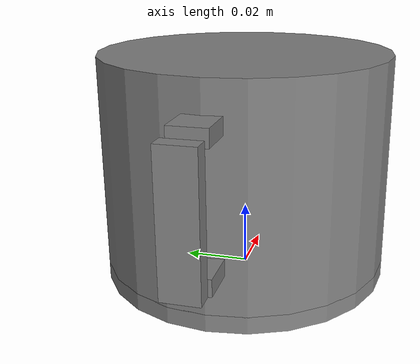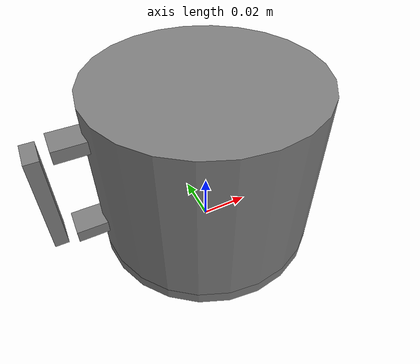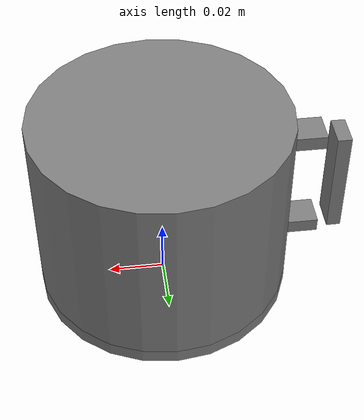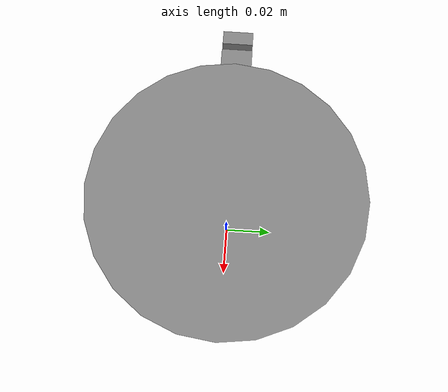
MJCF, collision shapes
<mujoco model="empty_libero_mug_yellow">
  <asset>
    <mesh name="empty_libero_mug_yellow_visual" file="../../../../../notebooks/custom_assets/libero_mug_yellow/libero_mug_yellow.obj" scale=".01 .01 .01"/>
    <texture name="empty_libero_mug_yellow_tex" file="../../../../../notebooks/custom_assets/libero_mug_yellow/libero_mug_yellow.png" type="2d"/>
    <material name="empty_libero_mug_yellow_mat" texture="empty_libero_mug_yellow_tex" specular="1" shininess="1"/>
  </asset>
  <worldbody>
    <body>
      <body name="object">
        <geom
          type="mesh"
          mesh="empty_libero_mug_yellow_visual"
          material="empty_libero_mug_yellow_mat"
          quat="0.7071067690849304 0.7071067690849304 0 0"
          group="1"
          contype="0"
          conaffinity="0"
        />
        <geom type="cylinder" density="5" size="0.045 0.0026" group="0" pos="0 0 0.0026" solimp="0.998 0.998 0.001" solref="0.001 1"/>
        <geom type="cylinder" density="5" size="0.045 0.033" group="0" pos="0 0 0.038" solimp="0.998 0.998 0.001" solref="0.001 1"/>
        <body name="handle" pos="-0.056 0 0.0395" quat="0 0 -0.7071068286895752 0.7071067690849304">
          <geom type="box" density="0.005" size="0.0025 0.020 0.0055" group="0" pos="0.006 0 0" solimp="0.998 0.998 0.001" solref="0.001 1"/>
          <geom type="box" density="0.005" size="0.0070 0.0025 0.0055" group="0" pos="-0.007 -0.0195 0" solimp="0.998 0.998 0.001" solref="0.001 1"/>
          <geom type="box" density="0.005" size="0.0070 0.0025 0.0055" group="0" pos="-0.007 0.0195 0" solimp="0.998 0.998 0.001" solref="0.001 1"/>
        </body>
      </body>
      <site rgba="0 0 0 0" size="0.005" pos="0 0 -0.04" name="bottom_site"/>
      <site rgba="0 0 0 0" size="0.005" pos="0 0 0.04" name="top_site"/>
      <site rgba="0 0 0 0" size="0.005" pos="0.005 0.005 0" name="horizontal_radius_site"/>
    </body>
  </worldbody>
</mujoco>
